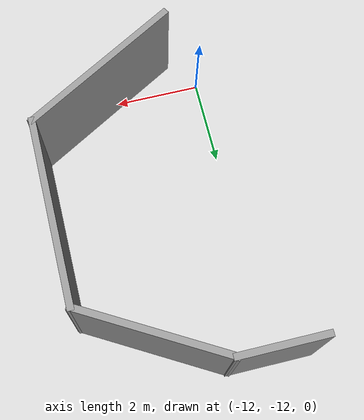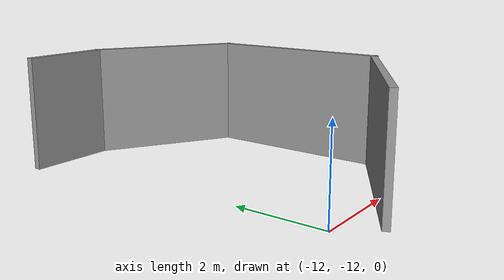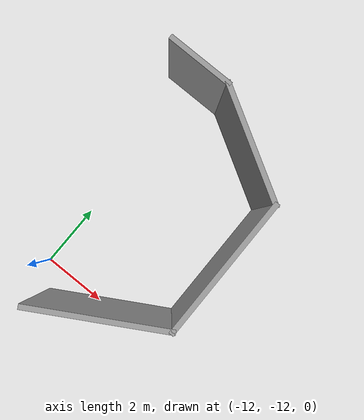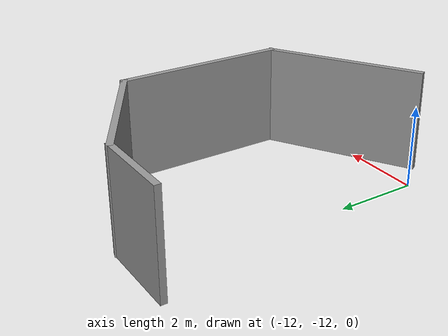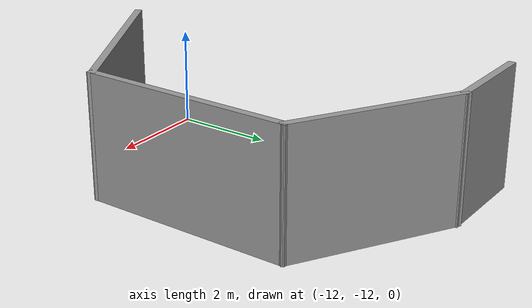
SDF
<?xml version='1.0'?>
<sdf version='1.7'>
  <model name='wall'>
    <pose>-6.41669 -6.41871 0 0 -0 0</pose>
    <link name='Wall_10'>
      <collision name='Wall_10_Collision'>
        <geometry>
          <box>
            <size>3.5 0.15 2.5</size>
          </box>
        </geometry>
        <pose>0 0 1.25 0 -0 0</pose>
      </collision>
      <visual name='Wall_10_Visual'>
        <pose>0 0 1.25 0 -0 0</pose>
        <geometry>
          <box>
            <size>3.5 0.15 2.5</size>
          </box>
        </geometry>
        <material>
          <script>
            <uri>file://media/materials/scripts/gazebo.material</uri>
            <name>Gazebo/Grey</name>
          </script>
          <ambient>1 1 1 1</ambient>
        </material>
        <meta>
          <layer>0</layer>
        </meta>
      </visual>
      <pose>-3.0411 0.546247 0 0 -0 2.61799</pose>
    </link>
    <link name='Wall_11'>
      <collision name='Wall_11_Collision'>
        <geometry>
          <box>
            <size>2 0.15 2.5</size>
          </box>
        </geometry>
        <pose>0 0 1.25 0 -0 0</pose>
      </collision>
      <visual name='Wall_11_Visual'>
        <pose>0 0 1.25 0 -0 0</pose>
        <geometry>
          <box>
            <size>2 0.15 2.5</size>
          </box>
        </geometry>
        <material>
          <script>
            <uri>file://media/materials/scripts/gazebo.material</uri>
            <name>Gazebo/Grey</name>
          </script>
          <ambient>1 1 1 1</ambient>
        </material>
        <meta>
          <layer>0</layer>
        </meta>
      </visual>
      <pose>-5.41669 1.38375 0 0 -0 3.14159</pose>
    </link>
    <link name='Wall_8'>
      <collision name='Wall_8_Collision'>
        <geometry>
          <box>
            <size>4 0.15 2.5</size>
          </box>
        </geometry>
        <pose>0 0 1.25 0 -0 0</pose>
      </collision>
      <visual name='Wall_8_Visual'>
        <pose>0 0 1.25 0 -0 0</pose>
        <geometry>
          <box>
            <size>4 0.15 2.5</size>
          </box>
        </geometry>
        <material>
          <script>
            <uri>file://media/materials/scripts/gazebo.material</uri>
            <name>Gazebo/Grey</name>
          </script>
          <ambient>1 1 1 1</ambient>
        </material>
        <meta>
          <layer>0</layer>
        </meta>
      </visual>
      <pose>-3.25761 -5.35375 0 0 -0 0.523599</pose>
    </link>
    <link name='Wall_9'>
      <collision name='Wall_9_Collision'>
        <geometry>
          <box>
            <size>4.25 0.15 2.5</size>
          </box>
        </geometry>
        <pose>0 0 1.25 0 -0 0</pose>
      </collision>
      <visual name='Wall_9_Visual'>
        <pose>0 0 1.25 0 -0 0</pose>
        <geometry>
          <box>
            <size>4.25 0.15 2.5</size>
          </box>
        </geometry>
        <material>
          <script>
            <uri>file://media/materials/scripts/gazebo.material</uri>
            <name>Gazebo/Grey</name>
          </script>
          <ambient>1 1 1 1</ambient>
        </material>
        <meta>
          <layer>0</layer>
        </meta>
      </visual>
      <pose>-1.59051 -2.34125 0 0 -0 1.5708</pose>
    </link>
    <static>1</static>
  </model>
</sdf>
